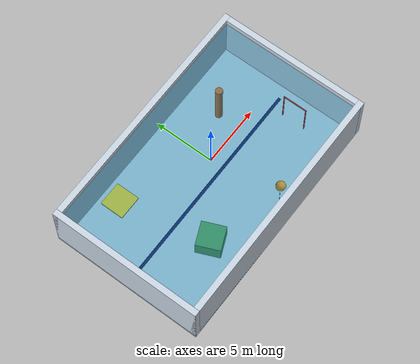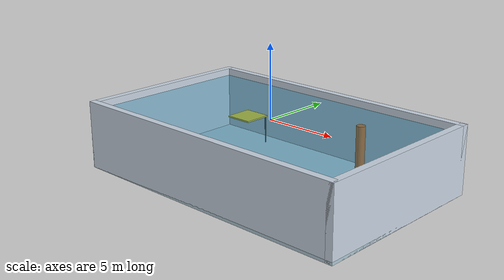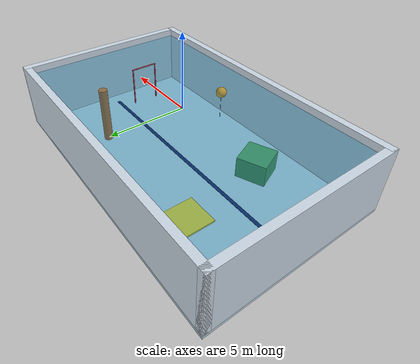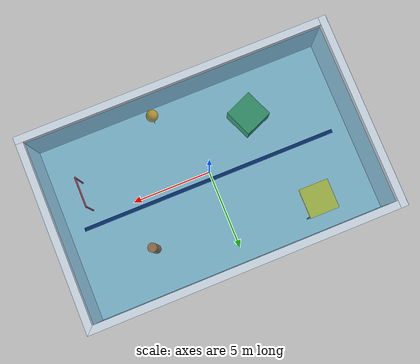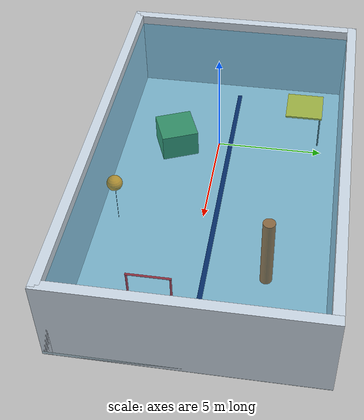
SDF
<?xml version="1.0"?>
<sdf version="1.10">
  <world name="pool">
    <physics name="2ms" type="ignored">
      <max_step_size>0.002</max_step_size>
      <real_time_factor>1.0</real_time_factor>
    </physics>

    <plugin filename="gz-sim-physics-system" name="gz::sim::systems::Physics"/>
    <plugin filename="gz-sim-user-commands-system" name="gz::sim::systems::UserCommands"/>
    <plugin filename="gz-sim-scene-broadcaster-system" name="gz::sim::systems::SceneBroadcaster"/>
    <!-- Render engine is chosen on the gz command line (launch arg
         `render_engine`), not here; see rov_gazebo/launch/sim.launch.py. -->
    <plugin filename="gz-sim-sensors-system" name="gz::sim::systems::Sensors"/>
    <plugin filename="gz-sim-imu-system" name="gz::sim::systems::Imu"/>

    <plugin filename="gz-sim-buoyancy-system" name="gz::sim::systems::Buoyancy">
      <graded_buoyancy>
        <default_density>1000</default_density>
        <density_change>
          <above_depth>0</above_depth>
          <density>1</density>
        </density_change>
      </graded_buoyancy>
      <enable>rov</enable>
    </plugin>

    <scene>
      <ambient>0.4 0.6 0.7 1</ambient>
      <background>0.1 0.4 0.55 1</background>
      <grid>false</grid>
    </scene>

    <light type="directional" name="sun">
      <cast_shadows>true</cast_shadows>
      <pose>0 0 10 0 0 0</pose>
      <diffuse>0.9 0.9 0.9 1</diffuse>
      <specular>0.3 0.3 0.3 1</specular>
      <direction>-0.3 0.2 -0.9</direction>
    </light>

    <!-- ===================== Pool structure ===================== -->
    <model name="pool">
      <static>true</static>
      <link name="link">
        <!-- floor -->
        <collision name="floor_collision">
          <pose>0 0 -4.1 0 0 0</pose>
          <geometry><box><size>21 13 0.2</size></box></geometry>
        </collision>
        <visual name="floor_visual">
          <pose>0 0 -4.1 0 0 0</pose>
          <geometry><box><size>21 13 0.2</size></box></geometry>
          <material><ambient>0.6 0.7 0.75 1</ambient><diffuse>0.7 0.8 0.85 1</diffuse></material>
        </visual>
        <!-- lane line on the floor along x, handy for visual reference -->
        <visual name="lane_line">
          <pose>0 0 -3.995 0 0 0</pose>
          <geometry><box><size>18 0.25 0.01</size></box></geometry>
          <material><ambient>0.05 0.05 0.2 1</ambient><diffuse>0.05 0.05 0.3 1</diffuse></material>
        </visual>
        <!-- walls: x = +/-10.25, y = +/-6.25, height from -4.2 to +0.5 -->
        <collision name="wall_px_collision">
          <pose>10.25 0 -1.85 0 0 0</pose>
          <geometry><box><size>0.5 13 4.7</size></box></geometry>
        </collision>
        <visual name="wall_px_visual">
          <pose>10.25 0 -1.85 0 0 0</pose>
          <geometry><box><size>0.5 13 4.7</size></box></geometry>
          <material><ambient>0.75 0.8 0.85 1</ambient><diffuse>0.8 0.85 0.9 1</diffuse></material>
        </visual>
        <collision name="wall_nx_collision">
          <pose>-10.25 0 -1.85 0 0 0</pose>
          <geometry><box><size>0.5 13 4.7</size></box></geometry>
        </collision>
        <visual name="wall_nx_visual">
          <pose>-10.25 0 -1.85 0 0 0</pose>
          <geometry><box><size>0.5 13 4.7</size></box></geometry>
          <material><ambient>0.75 0.8 0.85 1</ambient><diffuse>0.8 0.85 0.9 1</diffuse></material>
        </visual>
        <collision name="wall_py_collision">
          <pose>0 6.25 -1.85 0 0 0</pose>
          <geometry><box><size>21 0.5 4.7</size></box></geometry>
        </collision>
        <visual name="wall_py_visual">
          <pose>0 6.25 -1.85 0 0 0</pose>
          <geometry><box><size>21 0.5 4.7</size></box></geometry>
          <material><ambient>0.75 0.8 0.85 1</ambient><diffuse>0.8 0.85 0.9 1</diffuse></material>
        </visual>
        <collision name="wall_ny_collision">
          <pose>0 -6.25 -1.85 0 0 0</pose>
          <geometry><box><size>21 0.5 4.7</size></box></geometry>
        </collision>
        <visual name="wall_ny_visual">
          <pose>0 -6.25 -1.85 0 0 0</pose>
          <geometry><box><size>21 0.5 4.7</size></box></geometry>
          <material><ambient>0.75 0.8 0.85 1</ambient><diffuse>0.8 0.85 0.9 1</diffuse></material>
        </visual>
        <!-- water surface: visual only, no collision -->
        <visual name="water_surface">
          <pose>0 0 0 0 0 0</pose>
          <geometry><box><size>20 12 0.001</size></box></geometry>
          <transparency>0.7</transparency>
          <cast_shadows>false</cast_shadows>
          <material><ambient>0.0 0.4 0.6 0.3</ambient><diffuse>0.0 0.5 0.7 0.3</diffuse></material>
        </visual>
      </link>
    </model>

    <!-- ===================== Obstacles ===================== -->
    <model name="pillar">
      <static>true</static>
      <pose>5 3 -2 0 0 0</pose>
      <link name="link">
        <collision name="collision">
          <geometry><cylinder><radius>0.3</radius><length>4</length></cylinder></geometry>
        </collision>
        <visual name="visual">
          <geometry><cylinder><radius>0.3</radius><length>4</length></cylinder></geometry>
          <material><ambient>0.6 0.3 0.1 1</ambient><diffuse>0.8 0.4 0.1 1</diffuse></material>
        </visual>
      </link>
    </model>

    <model name="reef_block">
      <static>true</static>
      <pose>-4 -3 -3.25 0 0 0.4</pose>
      <link name="link">
        <collision name="collision">
          <geometry><box><size>2 2 1.5</size></box></geometry>
        </collision>
        <visual name="visual">
          <geometry><box><size>2 2 1.5</size></box></geometry>
          <material><ambient>0.3 0.5 0.3 1</ambient><diffuse>0.3 0.6 0.3 1</diffuse></material>
        </visual>
      </link>
    </model>

    <!-- Gate: 2 m wide opening between the posts, crossbar at z = -1.0 -->
    <model name="gate">
      <static>true</static>
      <pose>8 -2 0 0 0 0</pose>
      <link name="link">
        <collision name="post_left_collision">
          <pose>0 1.0 -2.5 0 0 0</pose>
          <geometry><cylinder><radius>0.05</radius><length>3.0</length></cylinder></geometry>
        </collision>
        <visual name="post_left_visual">
          <pose>0 1.0 -2.5 0 0 0</pose>
          <geometry><cylinder><radius>0.05</radius><length>3.0</length></cylinder></geometry>
          <material><ambient>0.8 0.1 0.1 1</ambient><diffuse>0.9 0.1 0.1 1</diffuse></material>
        </visual>
        <collision name="post_right_collision">
          <pose>0 -1.0 -2.5 0 0 0</pose>
          <geometry><cylinder><radius>0.05</radius><length>3.0</length></cylinder></geometry>
        </collision>
        <visual name="post_right_visual">
          <pose>0 -1.0 -2.5 0 0 0</pose>
          <geometry><cylinder><radius>0.05</radius><length>3.0</length></cylinder></geometry>
          <material><ambient>0.8 0.1 0.1 1</ambient><diffuse>0.9 0.1 0.1 1</diffuse></material>
        </visual>
        <collision name="crossbar_collision">
          <pose>0 0 -1.0 1.5708 0 0</pose>
          <geometry><cylinder><radius>0.05</radius><length>2.1</length></cylinder></geometry>
        </collision>
        <visual name="crossbar_visual">
          <pose>0 0 -1.0 1.5708 0 0</pose>
          <geometry><cylinder><radius>0.05</radius><length>2.1</length></cylinder></geometry>
          <material><ambient>0.8 0.1 0.1 1</ambient><diffuse>0.9 0.1 0.1 1</diffuse></material>
        </visual>
      </link>
    </model>

    <!-- Shelf: a suspended plate at mid depth (held by a thin rod to the floor) -->
    <model name="shelf">
      <static>true</static>
      <pose>-6 4 0 0 0 0</pose>
      <link name="link">
        <collision name="plate_collision">
          <pose>0 0 -2.0 0 0 0</pose>
          <geometry><box><size>2 2 0.1</size></box></geometry>
        </collision>
        <visual name="plate_visual">
          <pose>0 0 -2.0 0 0 0</pose>
          <geometry><box><size>2 2 0.1</size></box></geometry>
          <material><ambient>0.8 0.7 0.1 1</ambient><diffuse>0.9 0.8 0.1 1</diffuse></material>
        </visual>
        <collision name="rod_collision">
          <pose>0.9 0.9 -3.0 0 0 0</pose>
          <geometry><cylinder><radius>0.04</radius><length>2.0</length></cylinder></geometry>
        </collision>
        <visual name="rod_visual">
          <pose>0.9 0.9 -3.0 0 0 0</pose>
          <geometry><cylinder><radius>0.04</radius><length>2.0</length></cylinder></geometry>
          <material><ambient>0.3 0.3 0.3 1</ambient><diffuse>0.4 0.4 0.4 1</diffuse></material>
        </visual>
      </link>
    </model>

    <!-- Buoy: tethered sphere -->
    <model name="buoy">
      <static>true</static>
      <pose>2 -5 0 0 0 0</pose>
      <link name="link">
        <collision name="sphere_collision">
          <pose>0 0 -1.5 0 0 0</pose>
          <geometry><sphere><radius>0.4</radius></sphere></geometry>
        </collision>
        <visual name="sphere_visual">
          <pose>0 0 -1.5 0 0 0</pose>
          <geometry><sphere><radius>0.4</radius></sphere></geometry>
          <material><ambient>0.9 0.5 0.0 1</ambient><diffuse>1.0 0.6 0.0 1</diffuse></material>
        </visual>
        <visual name="tether_visual">
          <pose>0 0 -2.95 0 0 0</pose>
          <geometry><cylinder><radius>0.01</radius><length>2.1</length></cylinder></geometry>
          <material><ambient>0.2 0.2 0.2 1</ambient><diffuse>0.2 0.2 0.2 1</diffuse></material>
        </visual>
      </link>
    </model>
  </world>
</sdf>
